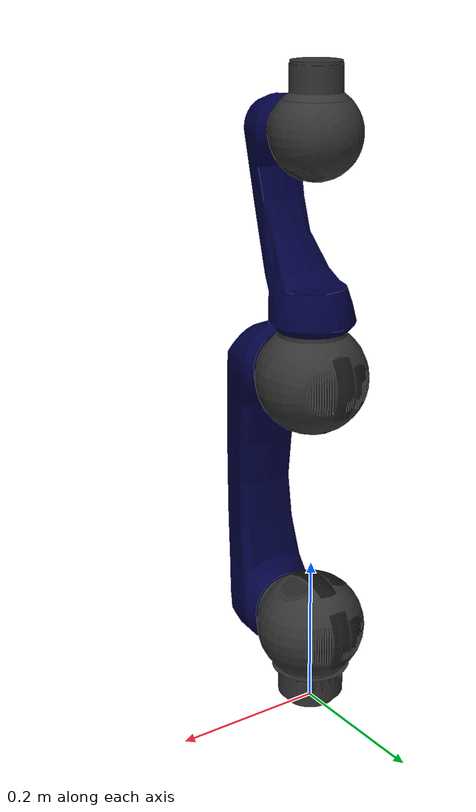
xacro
<?xml version="1.0"?>
<robot name="arm" xmlns:sensor="http://playerstage.sourceforge.net/gazebo/xmlschema/#sensor"
       xmlns:controller="http://playerstage.sourceforge.net/gazebo/xmlschema/#controller"
       xmlns:interface="http://playerstage.sourceforge.net/gazebo/xmlschema/#interface"
       xmlns:xacro="http://ros.org/wiki/xacro">

  <link name="base_link">
    <origin rpy="0 0 0" xyz="0 0 0"/>
  </link>

  <!-- load the actuall LWA4p -->
  <xacro:include filename="$(find schunk_canopen_driver)/urdf/lwa4p/lwa4p.urdf.xacro" />

  <!-- instantiate with a base link to attach it to -->
  <xacro:schunk_lwa4p parent="base_link" name="arm">
      <origin xyz="0 0 0" rpy="0 0 0" />

      <xacro:property name="arm_1_ref" value="2.1" />
      <xacro:property name="arm_2_ref" value="2.1" />
      <xacro:property name="arm_3_ref" value="2.1" />
      <xacro:property name="arm_4_ref" value="2.1" />
      <xacro:property name="arm_5_ref" value="2.1" />
      <xacro:property name="arm_6_ref" value="2.1" />
  </xacro:schunk_lwa4p>
</robot>

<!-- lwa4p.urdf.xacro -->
<robot xmlns:xacro="http://www.ros.org/wiki/xacro">
  <!-- Safety offset in rad towards the hard stop of the arm -->
  <property name="safety_offset" value="0.02"/>

  <!-- Some additional information used by other tools -->
  <xacro:include filename="$(find schunk_canopen_driver)/urdf/lwa4p/lwa4p.gazebo.xacro" />
  <xacro:include filename="$(find schunk_canopen_driver)/urdf/lwa4p/lwa4p.transmission.xacro" />

  <xacro:include filename="$(find schunk_canopen_driver)/urdf/materials.urdf.xacro" />

  <!-- Schunk Powerball (LWA4P) Macro -->
  <xacro:macro name="schunk_lwa4p" params="parent name *origin">

    <!-- joint between base_link and arm_0_link -->
    <joint name="${name}_0_joint" type="fixed" >
      <insert_block name="origin" />
      <parent link="${parent}" />
      <child link="${name}_0_link" />
    </joint>

    <link name="${name}_0_link">
      <inertial>
        <origin xyz="0 0 0" rpy="0 0 0" />
        <mass value="0.29364"/>
        <inertia ixx="0.01" ixy="0" ixz="0" iyy="0.01" iyz="0" izz="0.01" />
      </inertial>

       <visual>
        <origin xyz="0 0 0" rpy="0 0 0" />
        <geometry>
          <mesh filename="package://schunk_canopen_driver/meshes/lwa4p/arm_0_link.dae" />
        </geometry>
        <material name="Schunk/DarkGrey" />
      </visual>

      <collision>
        <origin xyz="0 0 0" rpy="0 0 0" />
        <geometry>
          <mesh filename="package://schunk_canopen_driver/meshes/lwa4p/arm_0_link.stl" />
        </geometry>
      </collision>
     </link>

     <joint name="${name}_1_joint" type="revolute">
        <origin xyz="0 0 0.11" rpy="0 0 0"/>
        <parent link="${name}_0_link"/>
        <child link="${name}_1_link"/>
        <axis xyz="0 0 1"/>
        <calibration rising="${arm_1_ref}"/>
        <limit effort="0.1" velocity="1.25" lower="${-2.97 + safety_offset}" upper="${2.97 - safety_offset}" />
     </joint>

    <link name="${name}_1_link">
      <xacro:default_inertial/>

      <visual>
        <origin xyz="0 0 0" rpy="0 0 0" />
        <geometry>
          <mesh filename="package://schunk_canopen_driver/meshes/lwa4p/arm_1_link.dae" />
        </geometry>
        <material name="Schunk/DarkGrey" />
      </visual>

      <collision>
        <origin xyz="0 0 0" rpy="0 0 0" />
        <geometry>
          <mesh filename="package://schunk_canopen_driver/meshes/lwa4p/arm_1_link.stl" />
        </geometry>
      </collision>
    </link>

    <!-- joint between arm_1_link and arm_2_link -->
    <joint name="${name}_2_joint" type="revolute">
      <origin xyz="0 0 0" rpy="1.5708 0 0"/>
      <parent link="${name}_1_link"/>
      <child link="${name}_2_link"/>
      <axis xyz="0 0 1"/>
      <limit effort="0.1" velocity="1.25" lower="${-2.97 + safety_offset}" upper="${2.97 - safety_offset}" />
      <!-- This is useful when the arm is mounted standing on a table -->
    </joint>

    <link name="${name}_2_link">
      <xacro:default_inertial/>

      <visual>
        <origin xyz="0 0 0" rpy="0 0 0" />
        <geometry>
          <mesh filename="package://schunk_canopen_driver/meshes/lwa4p/arm_2_link.dae" />
        </geometry>
        <material name="Schunk/Blue" />
      </visual>

      <collision>
        <origin xyz="0 0 0" rpy="0 0 0" />
        <geometry>
          <mesh filename="package://schunk_canopen_driver/meshes/lwa4p/arm_2_link.stl" />
        </geometry>
      </collision>
    </link>

    <!-- joint between arm_2_link and arm_3_link -->
    <joint name="${name}_3_joint" type="revolute">
      <origin xyz="0 0.350 0" rpy="0 3.14159 0"/>
      <parent link="${name}_2_link"/>
      <child link="${name}_3_link"/>
      <axis xyz="0 0 1"/>
      <limit effort="0.1" velocity="1.25" lower="${-2.97 + safety_offset}" upper="${2.97 - safety_offset}" />
      <safety_controller k_position="20" k_velocity="25" soft_lower_limit="${-2.7+ safety_offset}" soft_upper_limit="${2.7 - safety_offset}" />
    </joint>

    <link name="${name}_3_link">
      <xacro:default_inertial/>

      <visual>
        <origin xyz="0 0 0" rpy="0 0 0" />
        <geometry>
          <mesh filename="package://schunk_canopen_driver/meshes/lwa4p/arm_3_link.dae" />
        </geometry>
        <material name="Schunk/DarkGrey" />
      </visual>

      <collision>
        <origin xyz="0 0 0" rpy="0 0 0" />
        <geometry>
          <mesh filename="package://schunk_canopen_driver/meshes/lwa4p/arm_3_link.stl" />
        </geometry>
      </collision>
    </link>

    <!-- joint between arm_3_link and arm_4_link -->
    <joint name="${name}_4_joint" type="revolute">
      <origin xyz="0 0 0" rpy="-1.5708 3.14159 0" />
      <parent link="${name}_3_link"/>
      <child link="${name}_4_link"/>
      <axis xyz="0 0 1" />
      <limit effort="0.1" velocity="1.25" lower="${-2.97 + safety_offset}" upper="${2.97 - safety_offset}"/>
    </joint>

    <link name="${name}_4_link">
      <xacro:default_inertial/>

      <visual>
        <origin xyz="0 0 0" rpy="0 0 0" />
        <geometry>
          <mesh filename="package://schunk_canopen_driver/meshes/lwa4p/arm_4_link.dae" />
        </geometry>
        <material name="Schunk/Blue" />
      </visual>

      <collision>
        <origin xyz="0 0 0" rpy="0 0 0" />
        <geometry>
          <mesh filename="package://schunk_canopen_driver/meshes/lwa4p/arm_4_link.stl" />
        </geometry>
      </collision>
    </link>

    <!-- joint between arm_4_link and arm_5_link -->
    <joint name="${name}_5_joint" type="revolute">
      <origin xyz="0 0.005263 0.305" rpy="1.5708 0 3.14159" />
      <parent link="${name}_4_link"/>
      <child link="${name}_5_link"/>
      <axis xyz="0 0 1" />
      <limit effort="0.1" velocity="1.25" lower="${-2.97 + safety_offset}" upper="${2.97 - safety_offset}" />
    </joint>

    <link name="${name}_5_link">
      <xacro:default_inertial/>
      <visual>
        <origin xyz="0 0 0" rpy="0 0 0" />
        <geometry>
          <mesh filename="package://schunk_canopen_driver/meshes/lwa4p/arm_5_link.dae" />
        </geometry>
        <material name="Schunk/DarkGrey" />
      </visual>

      <collision>
        <origin xyz="0 0 0" rpy="0 0 0" />
        <geometry>
          <mesh filename="package://schunk_canopen_driver/meshes/lwa4p/arm_5_link.stl" />
        </geometry>
      </collision>
    </link>

    <!-- joint between arm_5_link and arm_6_link -->
    <joint name="${name}_6_joint" type="revolute">
      <origin xyz="0 0 0" rpy="-1.5708 0 0" />
      <parent link="${name}_5_link"/>
      <child link="${name}_6_link"/>
      <axis xyz="0 0 1" />
      <limit effort="20.1" velocity="1.25" lower="${-2.967 + safety_offset}" upper="${2.967 - safety_offset}" />
      <!--safety_controller k_position="20" k_velocity="25" soft_lower_limit="${-2.09 + 0.01}" soft_upper_limit="${2.09 - 0.01}" /-->
    </joint>

    <link name="${name}_6_link">
      <xacro:default_inertial/>
      <visual>
        <origin xyz="0 0 0" rpy="0 0 0" />
        <geometry>
          <mesh filename="package://schunk_canopen_driver/meshes/lwa4p/arm_6_link.dae" />
        </geometry>
        <material name="Schunk/DarkGrey" />
      </visual>

      <collision>
        <origin xyz="0 0 0" rpy="0 0 0" />
        <geometry>
          <mesh filename="package://schunk_canopen_driver/meshes/lwa4p/arm_6_link.stl" />
        </geometry>
      </collision>
    </link>

    <!-- joint between arm_6_link and tcp_link -->
    <joint name="${name}_tcp_joint" type="fixed">
      <origin xyz="0 0 0.08" rpy="0 0 0" />
      <parent link="${name}_6_link"/>
      <child link="${name}_tcp_link"/>
    </joint>
    <link name="${name}_tcp_link">
    </link>

    <!-- extensions -->
    <xacro:schunk_lwa4p_gazebo name="${name}" />
    <xacro:schunk_lwa4p_transmission name="${name}" />

  </xacro:macro>

</robot>

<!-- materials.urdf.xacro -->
<robot>

  <material name="Schunk/LightGrey">
    <color rgba="0.7 0.7 0.7 1.0"/>
  </material>

  <material name="Schunk/DarkGrey">
    <color rgba="0.2 0.2 0.2 1.0"/>
  </material>

  <material name="Schunk/Blue">
    <color rgba="0.0 0.0 0.25 1.0"/>
  </material>

</robot>
